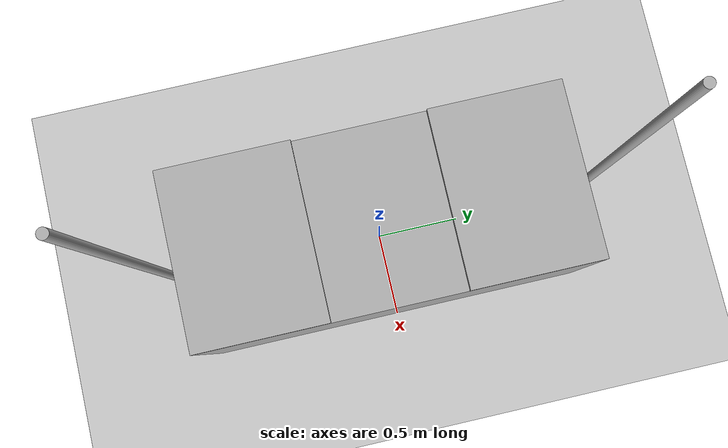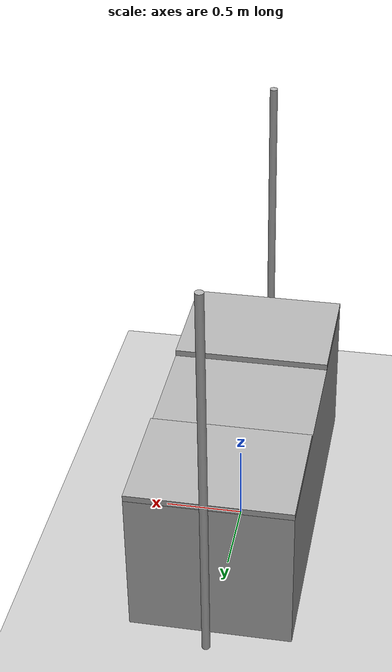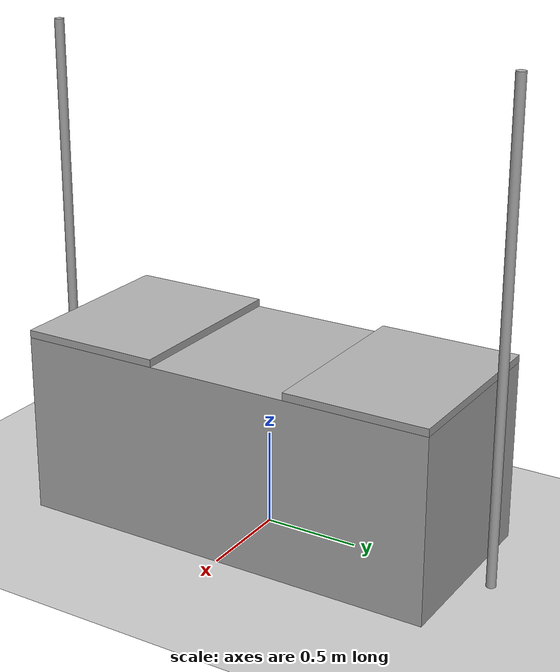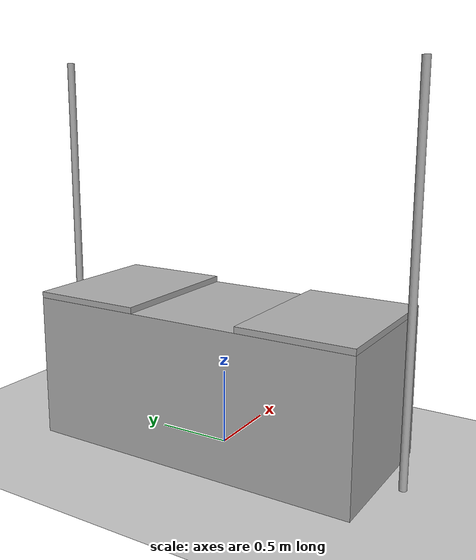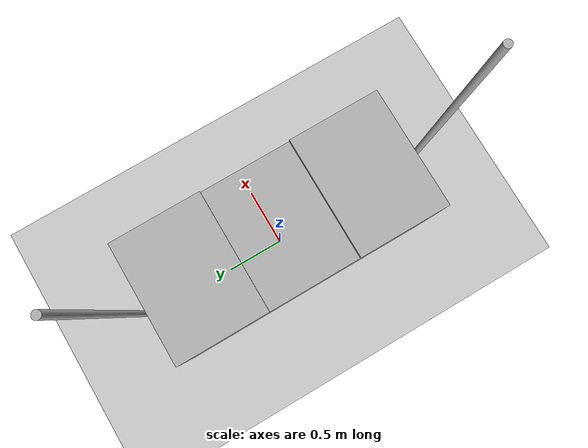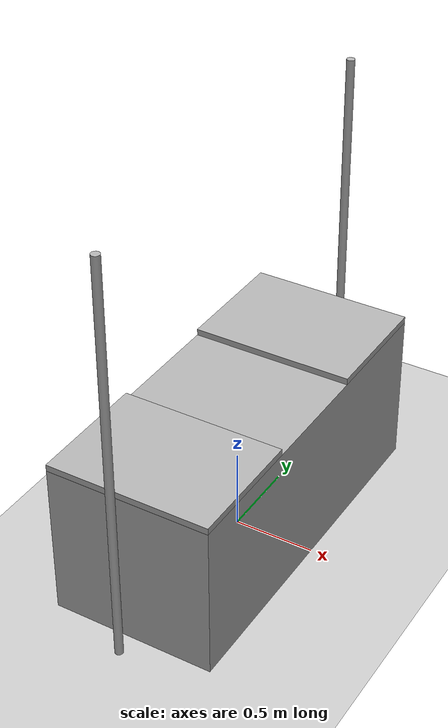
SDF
<sdf version='1.10'>
  <world name='empty_world_shapes'>
    <scene>
      <ambient>1 1 1 1</ambient>
      <background>0.800000012 0.800000012 0.800000012 1</background>
      <shadows>true</shadows>
    </scene>
    <gravity>0 0 -9.8000000000000007</gravity>
    <magnetic_field>6.0000000000000002e-06 2.3e-05 -4.1999999999999998e-05</magnetic_field>
    <atmosphere type='adiabatic'/>
    <physics type='ode'>
      <max_step_size>0.001</max_step_size>
      <real_time_factor>1</real_time_factor>
      <real_time_update_rate>1000</real_time_update_rate>
    </physics>
    <model name='ground_plane'>
      <static>true</static>
      <link name='link'>
        <collision name='collision'>
          <geometry>
            <plane>
              <normal>0 0 1</normal>
              <size>100 100</size>
            </plane>
          </geometry>
          <surface>
            <friction>
              <ode/>
            </friction>
            <bounce/>
            <contact/>
          </surface>
        </collision>
        <visual name='visual'>
          <geometry>
            <plane>
              <normal>0 0 1</normal>
              <size>100 100</size>
            </plane>
          </geometry>
          <material>
            <ambient>0.800000012 0.800000012 0.800000012 1</ambient>
            <diffuse>0.800000012 0.800000012 0.800000012 1</diffuse>
            <specular>0.800000012 0.800000012 0.800000012 1</specular>
          </material>
        </visual>
        <pose>0 0 0 0 0 0</pose>
        <inertial>
          <pose>0 0 0 0 0 0</pose>
          <mass>1</mass>
          <inertia>
            <ixx>1</ixx>
            <ixy>0</ixy>
            <ixz>0</ixz>
            <iyy>1</iyy>
            <iyz>0</iyz>
            <izz>1</izz>
          </inertia>
        </inertial>
        <enable_wind>false</enable_wind>
      </link>
      <pose>0 0 0 0 0 0</pose>
      <self_collide>false</self_collide>
    </model>
    <model name='box'>
      <pose>0.0 0.0 0.48 1.915724194647282e-08 2.8145898627602075e-09 3.2253321514130636e-07</pose>
      <link name='box_link'>
        <inertial>
          <inertia>
            <ixx>0.16666</ixx>
            <ixy>0</ixy>
            <ixz>0</ixz>
            <iyy>0.16666</iyy>
            <iyz>0</iyz>
            <izz>0.16666</izz>
          </inertia>
          <mass>1</mass>
          <pose>0 0 0 0 0 0</pose>
        </inertial>
        <collision name='box_collision'>
          <geometry>
            <box>
              <size>1 2.25 0.96</size>
            </box>
          </geometry>
          <surface>
            <friction>
              <ode/>
            </friction>
            <bounce/>
            <contact/>
          </surface>
        </collision>
        <visual name='box_visual'>
          <geometry>
            <box>
              <size>1 2.25 0.96</size>
            </box>
          </geometry>
          <material>
            <ambient>0.300000012 0.300000012 0.300000012 1</ambient>
            <diffuse>0.699999988 0.699999988 0.699999988 1</diffuse>
            <specular>1 1 1 1</specular>
          </material>
        </visual>
        <pose>0 0 0 0 0 0</pose>
        <enable_wind>false</enable_wind>
      </link>
      <static>false</static>
      <self_collide>false</self_collide>
    </model>
    <model name='mount_right'>
      <pose>0.0 0.75 0.98 1.915724194647282e-08 2.8145898627602075e-09 3.2253321514130636e-07</pose>
      <link name='box_link'>
        <inertial>
          <inertia>
            <ixx>0.16666</ixx>
            <ixy>0</ixy>
            <ixz>0</ixz>
            <iyy>0.16666</iyy>
            <iyz>0</iyz>
            <izz>0.16666</izz>
          </inertia>
          <mass>1</mass>
          <pose>0 0 0 0 0 0</pose>
        </inertial>
        <collision name='box_collision'>
          <geometry>
            <box>
              <size>1 0.75 0.04</size>
            </box>
          </geometry>
          <surface>
            <friction>
              <ode/>
            </friction>
            <bounce/>
            <contact/>
          </surface>
        </collision>
        <visual name='box_visual'>
          <geometry>
            <box>
              <size>1 0.75 0.04</size>
            </box>
          </geometry>
          <material>
            <ambient>0.300000012 0.300000012 0.300000012 1</ambient>
            <diffuse>0.699999988 0.699999988 0.699999988 1</diffuse>
            <specular>1 1 1 1</specular>
          </material>
        </visual>
        <pose>0 0 0 0 0 0</pose>
        <enable_wind>false</enable_wind>
      </link>
      <static>false</static>
      <self_collide>false</self_collide>
    </model>
    <model name='mount_left'>
      <pose>0.0 -0.75 0.98 1.915724194647282e-08 2.8145898627602075e-09 3.2253321514130636e-07</pose>
      <link name='box_link'>
        <inertial>
          <inertia>
            <ixx>0.16666</ixx>
            <ixy>0</ixy>
            <ixz>0</ixz>
            <iyy>0.16666</iyy>
            <iyz>0</iyz>
            <izz>0.16666</izz>
          </inertia>
          <mass>1</mass>
          <pose>0 0 0 0 0 0</pose>
        </inertial>
        <collision name='box_collision'>
          <geometry>
            <box>
              <size>1 0.75 0.04</size>
            </box>
          </geometry>
          <surface>
            <friction>
              <ode/>
            </friction>
            <bounce/>
            <contact/>
          </surface>
        </collision>
        <visual name='box_visual'>
          <geometry>
            <box>
              <size>1 0.75 0.04</size>
            </box>
          </geometry>
          <material>
            <ambient>0.300000012 0.300000012 0.300000012 1</ambient>
            <diffuse>0.699999988 0.699999988 0.699999988 1</diffuse>
            <specular>1 1 1 1</specular>
          </material>
        </visual>
        <pose>0 0 0 0 0 0</pose>
        <enable_wind>false</enable_wind>
      </link>
      <static>false</static>
      <self_collide>false</self_collide>
    </model>
    <model name='cylinder'>
      <pose>0.0 -1.25 1.25 1.6113191244405976e-19 3.7460940201939482e-20 2.2457205979786114e-20</pose>
      <link name='cylinder_link'>
        <inertial>
          <inertia>
            <ixx>0.14580000000000001</ixx>
            <ixy>0</ixy>
            <ixz>0</ixz>
            <iyy>0.14580000000000001</iyy>
            <iyz>0</iyz>
            <izz>0.125</izz>
          </inertia>
          <mass>1</mass>
          <pose>0 0 0 0 0 0</pose>
        </inertial>
        <collision name='cylinder_collision'>
          <geometry>
            <cylinder>
              <radius>0.025</radius>
              <length>2.5</length>
            </cylinder>
          </geometry>
          <surface>
            <friction>
              <ode/>
            </friction>
            <bounce/>
            <contact/>
          </surface>
        </collision>
        <visual name='cylinder_visual'>
          <geometry>
            <cylinder>
              <radius>0.025</radius>
              <length>2.5</length>
            </cylinder>
          </geometry>
          <material>
            <ambient>0.300000012 0.300000012 0.300000012 1</ambient>
            <diffuse>0.699999988 0.699999988 0.699999988 1</diffuse>
            <specular>1 1 1 1</specular>
          </material>
        </visual>
        <pose>0 0 0 0 0 0</pose>
        <enable_wind>false</enable_wind>
      </link>
      <static>false</static>
      <self_collide>false</self_collide>
    </model>
    <model name='cylinder_0'>
      <pose>-0.0 1.25 1.25 1.6451583362233975e-06 7.687250447845388e-07 -7.5722814379422568e-08</pose>
      <link name='cylinder_link'>
        <inertial>
          <inertia>
            <ixx>0.14580000000000001</ixx>
            <ixy>0</ixy>
            <ixz>0</ixz>
            <iyy>0.14580000000000001</iyy>
            <iyz>0</iyz>
            <izz>0.125</izz>
          </inertia>
          <mass>1</mass>
          <pose>0 0 0 0 0 0</pose>
        </inertial>
        <collision name='cylinder_collision'>
          <geometry>
            <cylinder>
              <radius>0.025</radius>
              <length>2.5</length>
            </cylinder>
          </geometry>
          <surface>
            <friction>
              <ode/>
            </friction>
            <bounce/>
            <contact/>
          </surface>
        </collision>
        <visual name='cylinder_visual'>
          <geometry>
            <cylinder>
              <radius>0.025</radius>
              <length>2.5</length>
            </cylinder>
          </geometry>
          <material>
            <ambient>0.300000012 0.300000012 0.300000012 1</ambient>
            <diffuse>0.699999988 0.699999988 0.699999988 1</diffuse>
            <specular>1 1 1 1</specular>
          </material>
        </visual>
        <pose>0 0 0 0 0 0</pose>
        <enable_wind>false</enable_wind>
      </link>
      <static>false</static>
      <self_collide>false</self_collide>
    </model>
    <light name='sun' type='directional'>
      <pose>0 0 10 0 0 0</pose>
      <cast_shadows>true</cast_shadows>
      <intensity>1</intensity>
      <direction>-0.5 0.10000000000000001 -0.90000000000000002</direction>
      <diffuse>0.800000012 0.800000012 0.800000012 1</diffuse>
      <specular>0.200000003 0.200000003 0.200000003 1</specular>
      <attenuation>
        <range>1000</range>
        <linear>0.01</linear>
        <constant>0.90000000000000002</constant>
        <quadratic>0.001</quadratic>
      </attenuation>
      <spot>
        <inner_angle>0</inner_angle>
        <outer_angle>0</outer_angle>
        <falloff>0</falloff>
      </spot>
    </light>
  </world>
</sdf>
